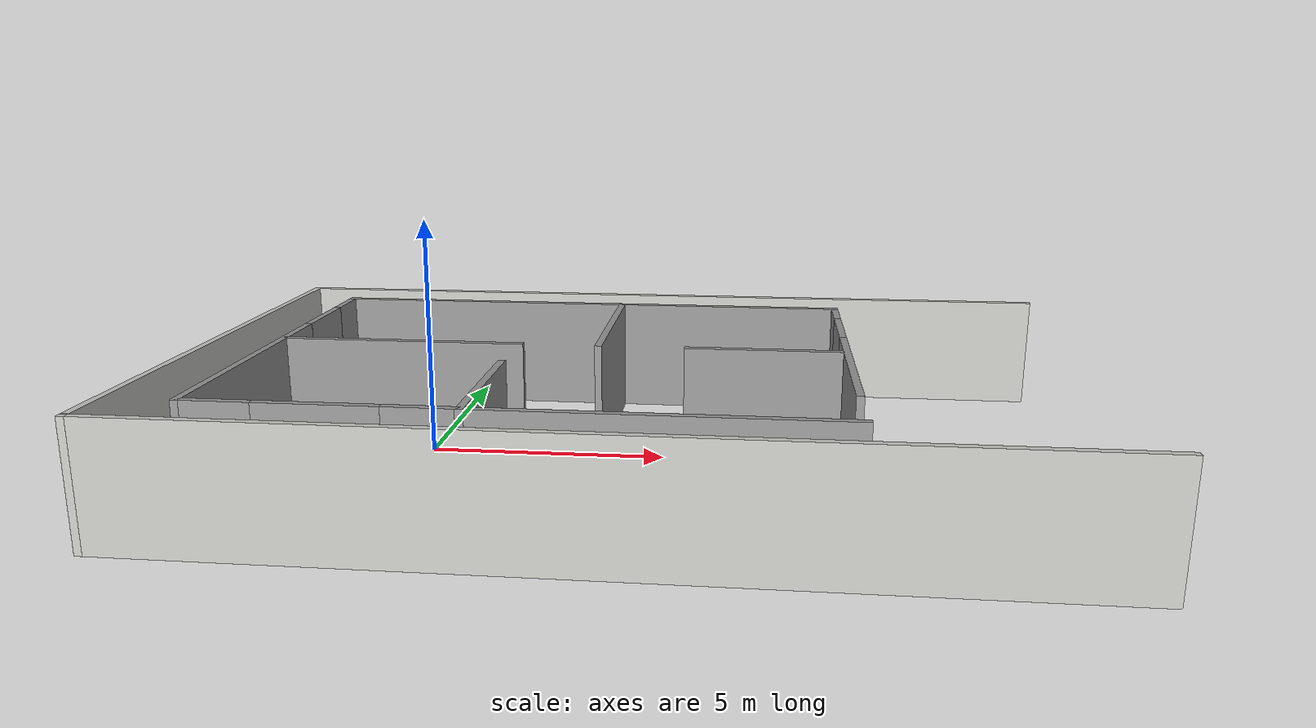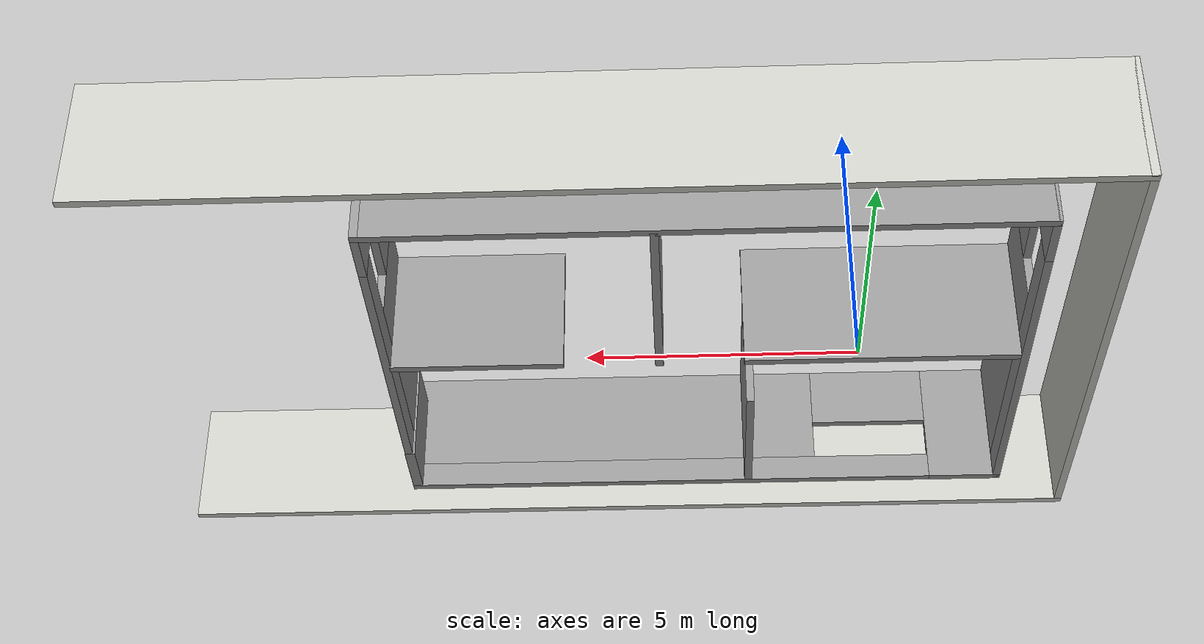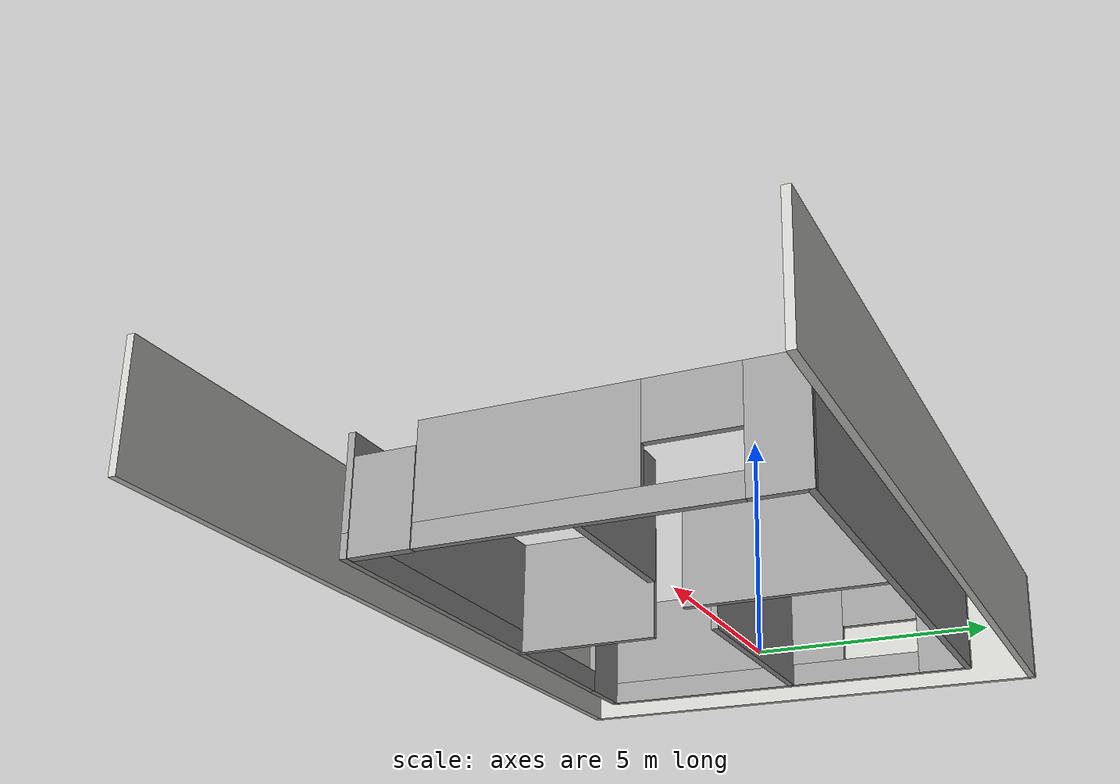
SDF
<?xml version='1.0'?>
<sdf version='1.7'>
  <model name='huawei'>
    <pose>4.48745 -0.42033 0 0 -0 0</pose>
    <link name='Door_1'>
      <collision name='Door_1_Collision'>
        <geometry>
          <box>
            <size>1.31853 0.2 2</size>
          </box>
        </geometry>
        <pose>0 0 1 0 -0 0</pose>
      </collision>
      <visual name='Door_1_Visual'>
        <pose>0 0 1 0 -0 0</pose>
        <geometry>
          <box>
            <size>1.31853 0.2 2</size>
          </box>
        </geometry>
        <material>
          <script>
            <uri>file://media/materials/scripts/gazebo.material</uri>
            <name>Gazebo/Grey</name>
          </script>
        </material>
      </visual>
      <pose>4.24859 -3.73041 0 0 -0 1.56459</pose>
    </link>
    <link name='Wall_11'>
      <collision name='Wall_11_Collision'>
        <geometry>
          <box>
            <size>12 0.15 2.5</size>
          </box>
        </geometry>
        <pose>0 0 1.25 0 -0 0</pose>
      </collision>
      <visual name='Wall_11_Visual'>
        <pose>0 0 1.25 0 -0 0</pose>
        <geometry>
          <box>
            <size>12 0.15 2.5</size>
          </box>
        </geometry>
        <material>
          <script>
            <uri>file://media/materials/scripts/gazebo.material</uri>
            <name>Gazebo/Grey</name>
          </script>
          <ambient>1 1 1 1</ambient>
        </material>
        <meta>
          <layer>0</layer>
        </meta>
      </visual>
      <pose>-1.65647 4.36674 0 0 -0 0</pose>
    </link>
    <link name='Wall_13'>
      <pose>-1.65647 -4.48326 0 0 -0 0</pose>
      <visual name='Wall_13_Visual_0'>
        <pose>-5.27987 0 1.25 0 -0 0</pose>
        <geometry>
          <box>
            <size>1.44026 0.15 2.5</size>
          </box>
        </geometry>
        <material>
          <script>
            <uri>file://media/materials/scripts/gazebo.material</uri>
            <name>Gazebo/Grey</name>
          </script>
          <ambient>1 1 1 1</ambient>
        </material>
        <meta>
          <layer>0</layer>
        </meta>
      </visual>
      <collision name='Wall_13_Collision_0'>
        <geometry>
          <box>
            <size>1.44026 0.15 2.5</size>
          </box>
        </geometry>
        <pose>-5.27987 0 1.25 0 -0 0</pose>
      </collision>
      <visual name='Wall_13_Visual_1'>
        <pose>0.720131 0 0.25 0 -0 0</pose>
        <geometry>
          <box>
            <size>10.5597 0.15 0.5</size>
          </box>
        </geometry>
        <material>
          <script>
            <uri>file://media/materials/scripts/gazebo.material</uri>
            <name>Gazebo/Grey</name>
          </script>
          <ambient>1 1 1 1</ambient>
        </material>
        <meta>
          <layer>0</layer>
        </meta>
      </visual>
      <collision name='Wall_13_Collision_1'>
        <geometry>
          <box>
            <size>10.5597 0.15 0.5</size>
          </box>
        </geometry>
        <pose>0.720131 0 0.25 0 -0 0</pose>
      </collision>
      <visual name='Wall_13_Visual_2'>
        <pose>1.87281 0 1.5 0 -0 0</pose>
        <geometry>
          <box>
            <size>8.25438 0.15 2</size>
          </box>
        </geometry>
        <material>
          <script>
            <uri>file://media/materials/scripts/gazebo.material</uri>
            <name>Gazebo/Grey</name>
          </script>
          <ambient>1 1 1 1</ambient>
        </material>
        <meta>
          <layer>0</layer>
        </meta>
      </visual>
      <collision name='Wall_13_Collision_2'>
        <geometry>
          <box>
            <size>8.25438 0.15 2</size>
          </box>
        </geometry>
        <pose>1.87281 0 1.5 0 -0 0</pose>
      </collision>
      <visual name='Wall_13_Visual_3'>
        <pose>-3.40706 0 1.9 0 -0 0</pose>
        <geometry>
          <box>
            <size>2.30536 0.15 1.2</size>
          </box>
        </geometry>
        <material>
          <script>
            <uri>file://media/materials/scripts/gazebo.material</uri>
            <name>Gazebo/Grey</name>
          </script>
          <ambient>1 1 1 1</ambient>
        </material>
        <meta>
          <layer>0</layer>
        </meta>
      </visual>
      <collision name='Wall_13_Collision_3'>
        <geometry>
          <box>
            <size>2.30536 0.15 1.2</size>
          </box>
        </geometry>
        <pose>-3.40706 0 1.9 0 -0 0</pose>
      </collision>
    </link>
    <link name='Wall_15'>
      <pose>4.26853 0.691741 0 0 -0 -1.5708</pose>
      <visual name='Wall_15_Visual_0'>
        <pose>-3.15526 0 1.25 0 -0 0</pose>
        <geometry>
          <box>
            <size>1.18948 0.15 2.5</size>
          </box>
        </geometry>
        <material>
          <script>
            <uri>file://media/materials/scripts/gazebo.material</uri>
            <name>Gazebo/Grey</name>
          </script>
          <ambient>1 1 1 1</ambient>
        </material>
        <meta>
          <layer>0</layer>
        </meta>
      </visual>
      <collision name='Wall_15_Collision_0'>
        <geometry>
          <box>
            <size>1.18948 0.15 2.5</size>
          </box>
        </geometry>
        <pose>-3.15526 0 1.25 0 -0 0</pose>
      </collision>
      <visual name='Wall_15_Visual_1'>
        <pose>0.594743 0 0.25 0 -0 0</pose>
        <geometry>
          <box>
            <size>6.31051 0.15 0.5</size>
          </box>
        </geometry>
        <material>
          <script>
            <uri>file://media/materials/scripts/gazebo.material</uri>
            <name>Gazebo/Grey</name>
          </script>
          <ambient>1 1 1 1</ambient>
        </material>
        <meta>
          <layer>0</layer>
        </meta>
      </visual>
      <collision name='Wall_15_Collision_1'>
        <geometry>
          <box>
            <size>6.31051 0.15 0.5</size>
          </box>
        </geometry>
        <pose>0.594743 0 0.25 0 -0 0</pose>
      </collision>
      <visual name='Wall_15_Visual_2'>
        <pose>1.52365 0 1.5 0 -0 0</pose>
        <geometry>
          <box>
            <size>4.4527 0.15 2</size>
          </box>
        </geometry>
        <material>
          <script>
            <uri>file://media/materials/scripts/gazebo.material</uri>
            <name>Gazebo/Grey</name>
          </script>
          <ambient>1 1 1 1</ambient>
        </material>
        <meta>
          <layer>0</layer>
        </meta>
      </visual>
      <collision name='Wall_15_Collision_2'>
        <geometry>
          <box>
            <size>4.4527 0.15 2</size>
          </box>
        </geometry>
        <pose>1.52365 0 1.5 0 -0 0</pose>
      </collision>
      <visual name='Wall_15_Visual_3'>
        <pose>-1.63161 0 1.9 0 -0 0</pose>
        <geometry>
          <box>
            <size>1.85782 0.15 1.2</size>
          </box>
        </geometry>
        <material>
          <script>
            <uri>file://media/materials/scripts/gazebo.material</uri>
            <name>Gazebo/Grey</name>
          </script>
          <ambient>1 1 1 1</ambient>
        </material>
        <meta>
          <layer>0</layer>
        </meta>
      </visual>
      <collision name='Wall_15_Collision_3'>
        <geometry>
          <box>
            <size>1.85782 0.15 1.2</size>
          </box>
        </geometry>
        <pose>-1.63161 0 1.9 0 -0 0</pose>
      </collision>
    </link>
    <link name='Wall_17'>
      <collision name='Wall_17_Collision'>
        <geometry>
          <box>
            <size>5.2 0.15 2.5</size>
          </box>
        </geometry>
        <pose>0 0 1.25 0 -0 0</pose>
      </collision>
      <visual name='Wall_17_Visual'>
        <pose>0 0 1.25 0 -0 0</pose>
        <geometry>
          <box>
            <size>5.2 0.15 2.5</size>
          </box>
        </geometry>
        <material>
          <script>
            <uri>file://media/materials/scripts/gazebo.material</uri>
            <name>Gazebo/Grey</name>
          </script>
          <ambient>1 1 1 1</ambient>
        </material>
        <meta>
          <layer>0</layer>
        </meta>
      </visual>
      <pose>-4.99543 0.145987 0 0 -0 0</pose>
    </link>
    <link name='Wall_20'>
      <collision name='Wall_20_Collision'>
        <geometry>
          <box>
            <size>3.3 0.15 2.5</size>
          </box>
        </geometry>
        <pose>0 0 1.25 0 -0 0</pose>
      </collision>
      <visual name='Wall_20_Visual'>
        <pose>0 0 1.25 0 -0 0</pose>
        <geometry>
          <box>
            <size>3.3 0.15 2.5</size>
          </box>
        </geometry>
        <material>
          <script>
            <uri>file://media/materials/scripts/gazebo.material</uri>
            <name>Gazebo/Grey</name>
          </script>
          <ambient>1 1 1 1</ambient>
        </material>
        <meta>
          <layer>0</layer>
        </meta>
      </visual>
      <pose>-2.53145 -2.90867 0 0 -0 -1.5708</pose>
    </link>
    <link name='Wall_24'>
      <collision name='Wall_24_Collision'>
        <geometry>
          <box>
            <size>4.25 0.15 2.5</size>
          </box>
        </geometry>
        <pose>0 0 1.25 0 -0 0</pose>
      </collision>
      <visual name='Wall_24_Visual'>
        <pose>0 0 1.25 0 -0 0</pose>
        <geometry>
          <box>
            <size>4.25 0.15 2.5</size>
          </box>
        </geometry>
        <material>
          <script>
            <uri>file://media/materials/scripts/gazebo.material</uri>
            <name>Gazebo/Grey</name>
          </script>
          <ambient>1 1 1 1</ambient>
        </material>
        <meta>
          <layer>0</layer>
        </meta>
      </visual>
      <pose>-0.820426 2.21899 0 0 -0 -1.5708</pose>
    </link>
    <link name='Wall_26'>
      <collision name='Wall_26_Collision'>
        <geometry>
          <box>
            <size>3.25 0.15 2.5</size>
          </box>
        </geometry>
        <pose>0 0 1.25 0 -0 0</pose>
      </collision>
      <visual name='Wall_26_Visual'>
        <pose>0 0 1.25 0 -0 0</pose>
        <geometry>
          <box>
            <size>3.25 0.15 2.5</size>
          </box>
        </geometry>
        <material>
          <script>
            <uri>file://media/materials/scripts/gazebo.material</uri>
            <name>Gazebo/Grey</name>
          </script>
          <ambient>1 1 1 1</ambient>
        </material>
        <meta>
          <layer>0</layer>
        </meta>
      </visual>
      <pose>2.58916 0.153535 0 0 -0 0</pose>
    </link>
    <link name='Wall_3'>
      <collision name='Wall_3_Collision'>
        <geometry>
          <box>
            <size>11.3 0.15 2.5</size>
          </box>
        </geometry>
        <pose>0 0 1.25 0 -0 0</pose>
      </collision>
      <visual name='Wall_3_Visual'>
        <pose>0 0 1.25 0 -0 0</pose>
        <geometry>
          <box>
            <size>11.3 0.15 2.5</size>
          </box>
        </geometry>
        <material>
          <script>
            <uri>file://media/materials/scripts/gazebo.material</uri>
            <name>Gazebo/CeilingTiled</name>
          </script>
          <ambient>1 1 1 1</ambient>
        </material>
        <meta>
          <layer>0</layer>
        </meta>
      </visual>
      <pose>-8.975 -0 0 0 -0 -1.5708</pose>
    </link>
    <link name='Wall_5'>
      <collision name='Wall_5_Collision'>
        <geometry>
          <box>
            <size>18.1 0.15 2.5</size>
          </box>
        </geometry>
        <pose>0 0 1.25 0 -0 0</pose>
      </collision>
      <visual name='Wall_5_Visual'>
        <pose>0 0 1.25 0 -0 0</pose>
        <geometry>
          <box>
            <size>18.1 0.15 2.5</size>
          </box>
        </geometry>
        <material>
          <script>
            <uri>file://media/materials/scripts/gazebo.material</uri>
            <name>Gazebo/CeilingTiled</name>
          </script>
          <ambient>1 1 1 1</ambient>
        </material>
        <meta>
          <layer>0</layer>
        </meta>
      </visual>
      <pose>0 5.575 0 0 -0 0</pose>
    </link>
    <link name='Wall_7'>
      <collision name='Wall_7_Collision'>
        <geometry>
          <box>
            <size>18.1 0.15 2.5</size>
          </box>
        </geometry>
        <pose>0 0 1.25 0 -0 0</pose>
      </collision>
      <visual name='Wall_7_Visual'>
        <pose>0 0 1.25 0 -0 0</pose>
        <geometry>
          <box>
            <size>18.1 0.15 2.5</size>
          </box>
        </geometry>
        <material>
          <script>
            <uri>file://media/materials/scripts/gazebo.material</uri>
            <name>Gazebo/CeilingTiled</name>
          </script>
          <ambient>1 1 1 1</ambient>
        </material>
        <meta>
          <layer>0</layer>
        </meta>
      </visual>
      <pose>0 -5.575 0 0 -0 0</pose>
    </link>
    <link name='Wall_9'>
      <pose>-7.58147 -0.058259 0 0 -0 -1.5708</pose>
      <visual name='Wall_9_Visual_0'>
        <pose>-3.90526 0 1.25 0 -0 0</pose>
        <geometry>
          <box>
            <size>1.18948 0.15 2.5</size>
          </box>
        </geometry>
        <material>
          <script>
            <uri>file://media/materials/scripts/gazebo.material</uri>
            <name>Gazebo/Grey</name>
          </script>
          <ambient>1 1 1 1</ambient>
        </material>
        <meta>
          <layer>0</layer>
        </meta>
      </visual>
      <collision name='Wall_9_Collision_0'>
        <geometry>
          <box>
            <size>1.18948 0.15 2.5</size>
          </box>
        </geometry>
        <pose>-3.90526 0 1.25 0 -0 0</pose>
      </collision>
      <visual name='Wall_9_Visual_1'>
        <pose>0.594743 0 0.25 0 -0 0</pose>
        <geometry>
          <box>
            <size>7.81051 0.15 0.5</size>
          </box>
        </geometry>
        <material>
          <script>
            <uri>file://media/materials/scripts/gazebo.material</uri>
            <name>Gazebo/Grey</name>
          </script>
          <ambient>1 1 1 1</ambient>
        </material>
        <meta>
          <layer>0</layer>
        </meta>
      </visual>
      <collision name='Wall_9_Collision_1'>
        <geometry>
          <box>
            <size>7.81051 0.15 0.5</size>
          </box>
        </geometry>
        <pose>0.594743 0 0.25 0 -0 0</pose>
      </collision>
      <visual name='Wall_9_Visual_2'>
        <pose>1.48297 0 1.5 0 -0 0</pose>
        <geometry>
          <box>
            <size>6.03407 0.15 2</size>
          </box>
        </geometry>
        <material>
          <script>
            <uri>file://media/materials/scripts/gazebo.material</uri>
            <name>Gazebo/Grey</name>
          </script>
          <ambient>1 1 1 1</ambient>
        </material>
        <meta>
          <layer>0</layer>
        </meta>
      </visual>
      <collision name='Wall_9_Collision_2'>
        <geometry>
          <box>
            <size>6.03407 0.15 2</size>
          </box>
        </geometry>
        <pose>1.48297 0 1.5 0 -0 0</pose>
      </collision>
      <visual name='Wall_9_Visual_3'>
        <pose>-2.42229 0 1.9 0 -0 0</pose>
        <geometry>
          <box>
            <size>1.77645 0.15 1.2</size>
          </box>
        </geometry>
        <material>
          <script>
            <uri>file://media/materials/scripts/gazebo.material</uri>
            <name>Gazebo/Grey</name>
          </script>
          <ambient>1 1 1 1</ambient>
        </material>
        <meta>
          <layer>0</layer>
        </meta>
      </visual>
      <collision name='Wall_9_Collision_3'>
        <geometry>
          <box>
            <size>1.77645 0.15 1.2</size>
          </box>
        </geometry>
        <pose>-2.42229 0 1.9 0 -0 0</pose>
      </collision>
    </link>
    <static>1</static>
  </model>
</sdf>
